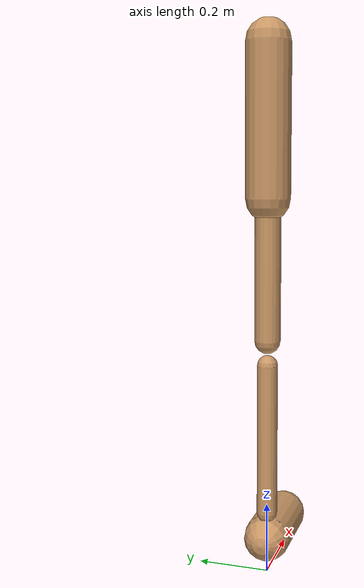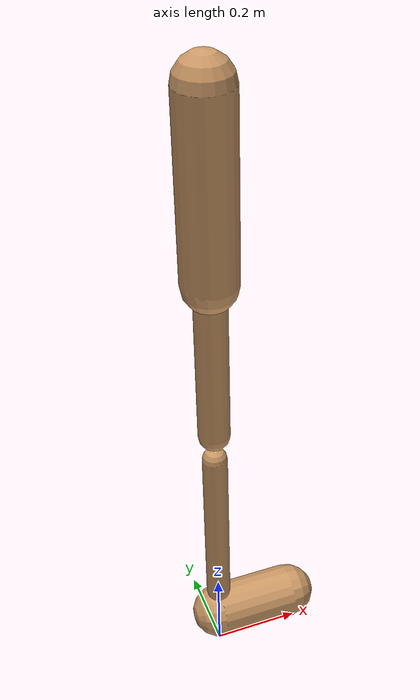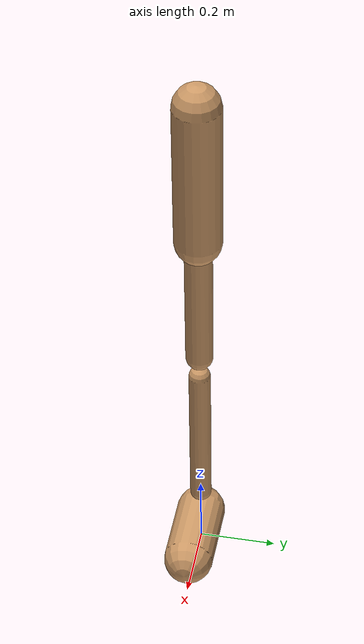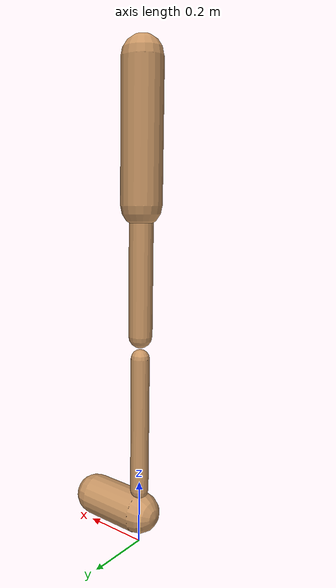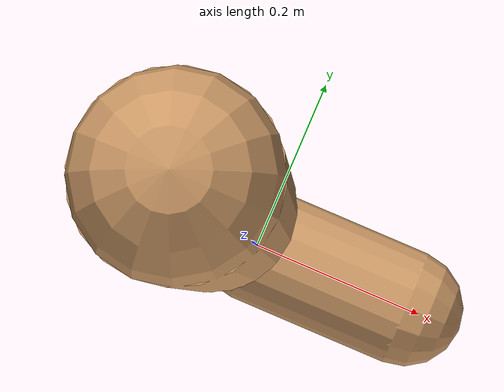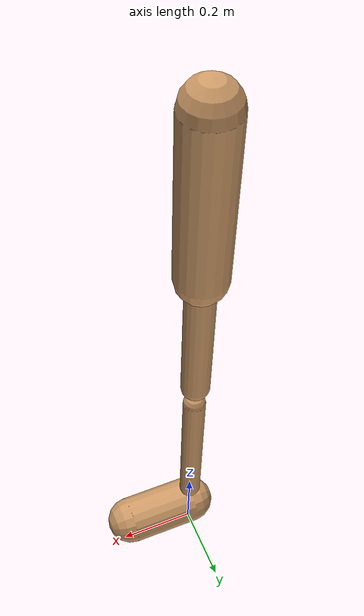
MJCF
<mujoco model="walker2d">
  <compiler angle="degree" coordinate="global" inertiafromgeom="true" />
  <default>
    <joint armature="0.01" damping=".1" limited="true" />
    <geom conaffinity="0" condim="3" contype="1" density="1000" friction="0.8 .1 .1" rgba="0.8 0.6 .4 1" />
  </default>
  <option integrator="RK4" timestep="0.002" />
  <worldbody>

    <body name="torso" pos="0 0 -0.1446650325364279">
      <joint armature="0" axis="1 0 0" damping="0" limited="false" name="ignorex" pos="0 0 0" stiffness="0" type="slide" />
      <joint armature="0" axis="0 0 1" damping="0" limited="false" name="ignorez" pos="0 0 0" ref="1.25" stiffness="0" type="slide" />
      <joint armature="0" axis="0 1 0" damping="0" limited="false" name="ignorey" pos="0 0 0" stiffness="0" type="hinge" />
      <geom fromto="0 0 1.45 0 0 1.05" name="torso_geom" size="0.06014071376263244" type="capsule" />
      <body name="thigh">
        <joint axis="0 -1 0" name="thigh_joint" pos="0 0 1.05" range="-150 0" type="hinge" />
        <geom fromto="0.0 0.0 1.05 0.0 0.0 0.6685255417277816" name="thigh_geom" size="0.03528489241568557" type="capsule" />
        <body name="leg" pos="0.0 0.0 0.06852554172778158">
          <joint axis="0 -1 0" name="leg_joint" pos="0 0 0.6" range="-150 0" type="hinge" />
          <geom fromto="0.0 0.0 0.6 0.0 0.0 0.17613949080864627" name="leg_geom" size="0.028227913932548452" type="capsule" />
          <body name="foot" pos="0.0 0.0 0.07613949080864627">
            <joint axis="0 -1 0" name="foot_joint" pos="0 0 0.1" range="-45 45" type="hinge" />
            <geom fromto="0.0 0.0 0.1 0.1801471535998769 0.0 0.1" name="foot_geom" size="0.06438475220334877" type="capsule" />
          </body>
        </body>
      </body>

      <body name="thigh_left">
        <joint axis="0 -1 0" name="thigh_left_joint" pos="0 0 1.05" range="-150 0" type="hinge" />
        <geom fromto="0.0 0.0 1.05 0.0 0.0 0.6685255417277816" name="thigh_left_geom" rgba=".7 .3 .6 1" size="0.03528489241568557" type="capsule" />
        <body name="leg_left" pos="0.0 0.0 0.06852554172778158">
          <joint axis="0 -1 0" name="leg_left_joint" pos="0 0 0.6" range="-150 0" type="hinge" />
          <geom fromto="0.0 0.0 0.6 0.0 0.0 0.17613949080864627" name="leg_left_geom" rgba=".7 .3 .6 1" size="0.028227913932548452" type="capsule" />
          <body name="foot_left" pos="0.0 0.0 0.07613949080864627">
            <joint axis="0 -1 0" name="foot_left_joint" pos="0 0 0.1" range="-45 45" type="hinge" />
            <geom fromto="0.0 0.0 0.1 0.1801471535998769 0.0 0.1" name="foot_left_geom" rgba=".7 .3 .6 1" size="0.06438475220334877" type="capsule" />
          </body>
        </body>
      </body>
    </body>
  </worldbody>
  <actuator>

    <motor ctrllimited="true" ctrlrange="-1.0 1.0" gear="100" joint="thigh_joint" />
    <motor ctrllimited="true" ctrlrange="-1.0 1.0" gear="100" joint="leg_joint" />
    <motor ctrllimited="true" ctrlrange="-1.0 1.0" gear="100" joint="foot_joint" />
    <motor ctrllimited="true" ctrlrange="-1.0 1.0" gear="100" joint="thigh_left_joint" />
    <motor ctrllimited="true" ctrlrange="-1.0 1.0" gear="100" joint="leg_left_joint" />
    <motor ctrllimited="true" ctrlrange="-1.0 1.0" gear="100" joint="foot_left_joint" />

  </actuator>
</mujoco>
